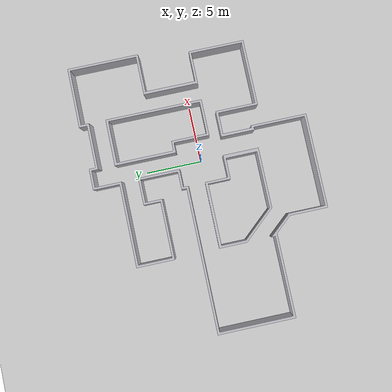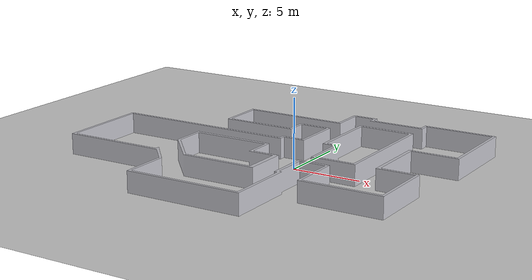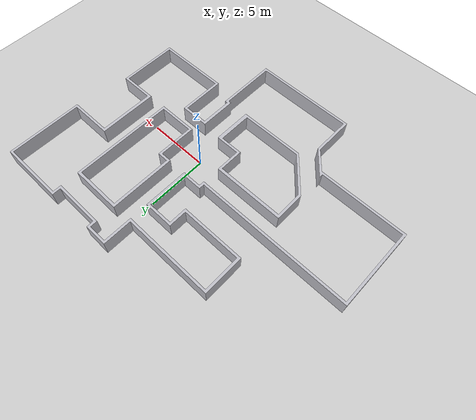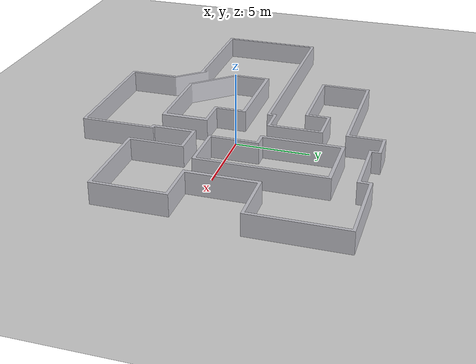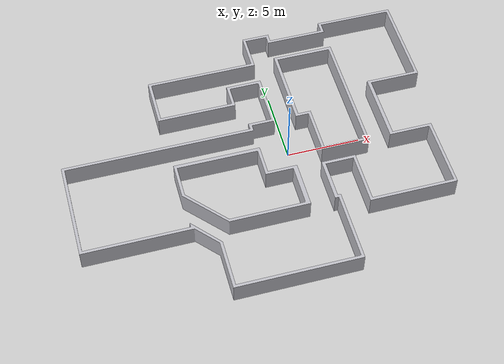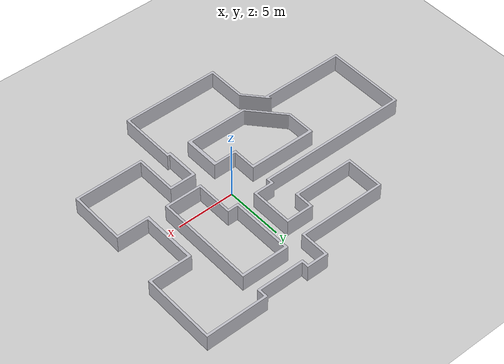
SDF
<sdf version="1.7">
 <world name="default">
  <light name="sun" type="directional">
   <pose>0 0 10 0 -0 0</pose>
   <diffuse>0.8 0.8 0.8 1</diffuse>
   <specular>0.2 0.2 0.2 1</specular>
   <attenuation>
    <range>1000</range>
    <constant>0.9</constant>
    <linear>0.01</linear>
    <quadratic>0.001</quadratic>
   </attenuation>
   <direction>-0.5 0.1 -0.9</direction>
   <spot><inner_angle>0</inner_angle><outer_angle>0</outer_angle><falloff>0</falloff></spot>
  </light>
  <model name="ground_plane">
   <static>1</static>
   <link name="link">
    <collision name="collision">
     <geometry><plane><normal>0 0 1</normal><size>100 100</size></plane></geometry>
     <surface><friction><ode><mu>100</mu><mu2>50</mu2></ode></friction></surface>
    </collision>
    <visual name="visual">
     <cast_shadows>0</cast_shadows>
     <geometry><plane><normal>0 0 1</normal><size>100 100</size></plane></geometry>
     <material>
      <script><uri>file://media/materials/scripts/gazebo.material</uri><name>Gazebo/Grey</name></script>
     </material>
    </visual>
   </link>
  </model>
  <gravity>0 0 -9.8</gravity>
  <magnetic_field>6e-06 2.3e-05 -4.2e-05</magnetic_field>
  <atmosphere type="adiabatic"/>
  <physics type="ode">
   <max_step_size>0.001</max_step_size>
   <real_time_factor>1</real_time_factor>
   <real_time_update_rate>1000</real_time_update_rate>
  </physics>
  <scene><ambient>0.4 0.4 0.4 1</ambient><background>0.7 0.7 0.7 1</background><shadows>1</shadows></scene>
  <spherical_coordinates>
   <surface_model>EARTH_WGS84</surface_model>
   <latitude_deg>0</latitude_deg>
   <longitude_deg>0</longitude_deg>
   <elevation>0</elevation>
   <heading_deg>0</heading_deg>
  </spherical_coordinates>
  <model name="Field">
   <link name="base_link">
    <inertial>
     <pose>-0.68262 0.461096 0.75 0 -0 0</pose>
     <mass>413932</mass>
     <inertia>
      <ixx>1.2422e+07</ixx>
      <ixy>-3.24428e+06</ixy>
      <ixz>0</ixz>
      <iyy>1.87398e+07</iyy>
      <iyz>0</iyz>
      <izz>3.10065e+07</izz>
     </inertia>
    </inertial>
    <collision name="base_link_collision">
     <geometry>
      <mesh><scale>0.001 0.001 0.001</scale><uri>model://models/lapras/meshes/wall_link.stl</uri></mesh>
     </geometry>
     <surface><friction><ode><mu>0.2</mu><mu2>0.2</mu2></ode></friction></surface>
    </collision>
    <visual name="base_link_visual">
     <geometry>
      <mesh><scale>0.001 0.001 0.001</scale><uri>model://models/lapras/meshes/wall_link.stl</uri></mesh>
     </geometry>
     <material>
      <script><name>Gazebo/Silver</name><uri>file://media/materials/scripts/gazebo.material</uri></script>
     </material>
    </visual>
    <self_collide>1</self_collide>
   </link>
   <static>0</static>
   <pose>0 -0 -3e-06 0 -0 0</pose>
  </model>
 </world>
</sdf>
